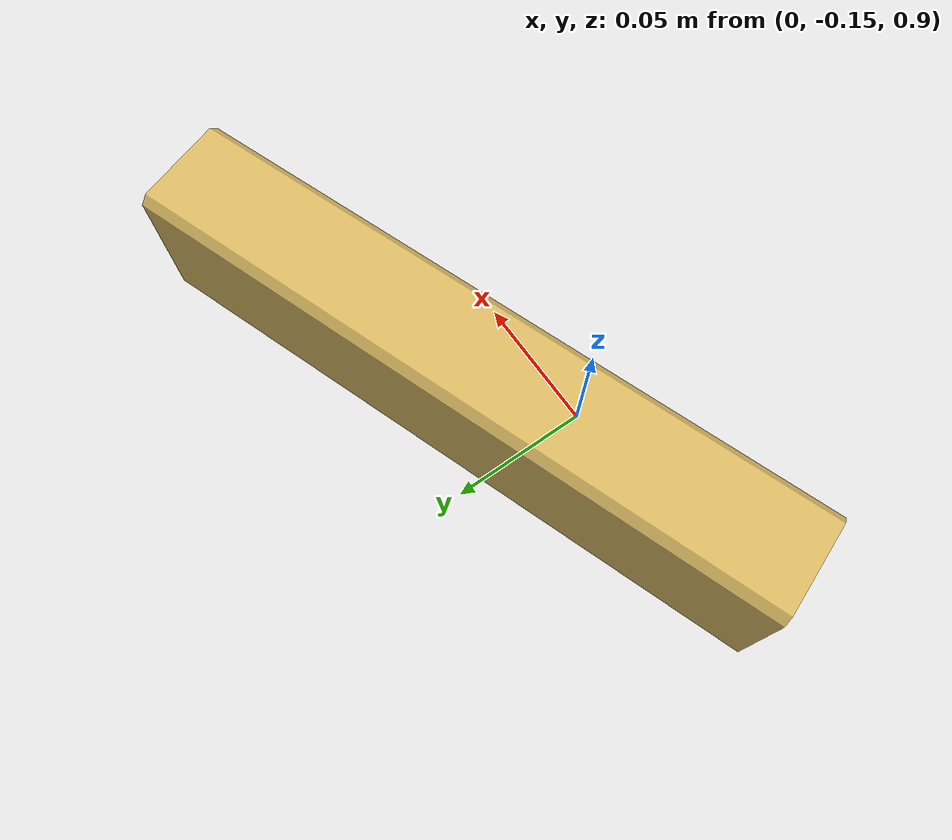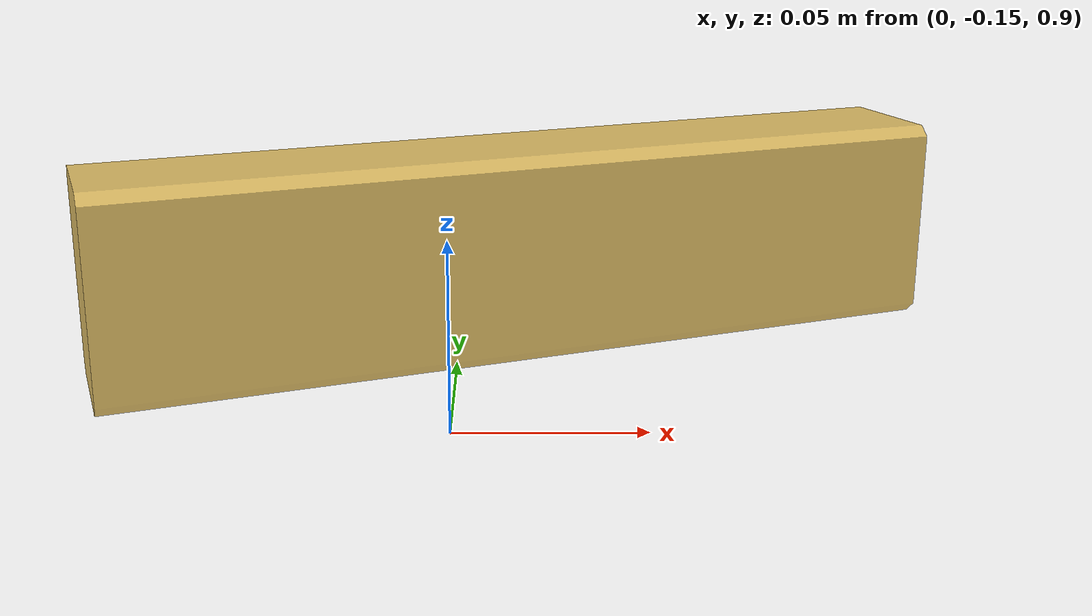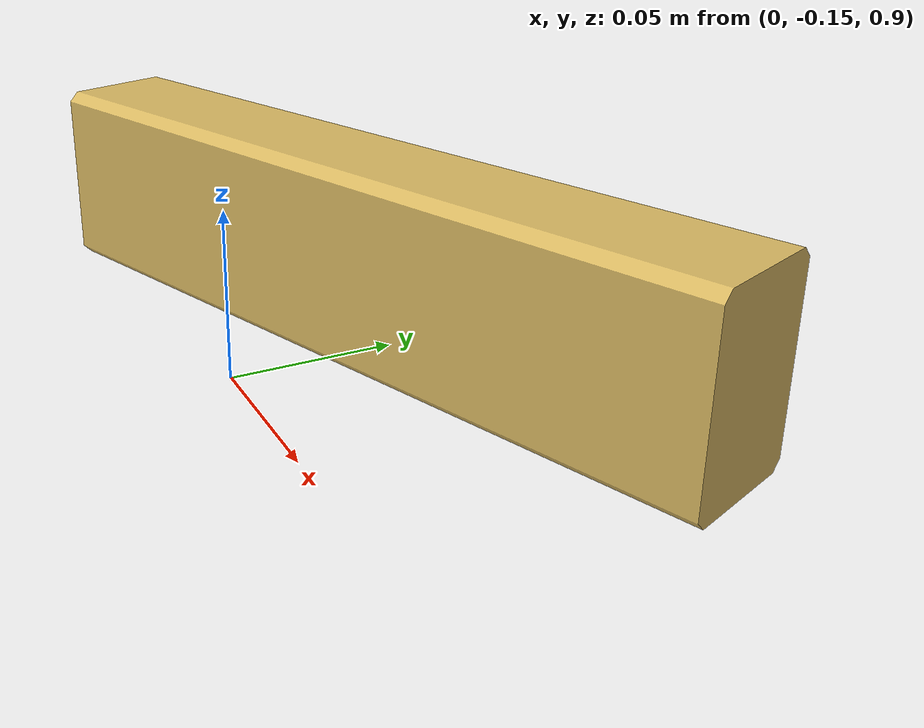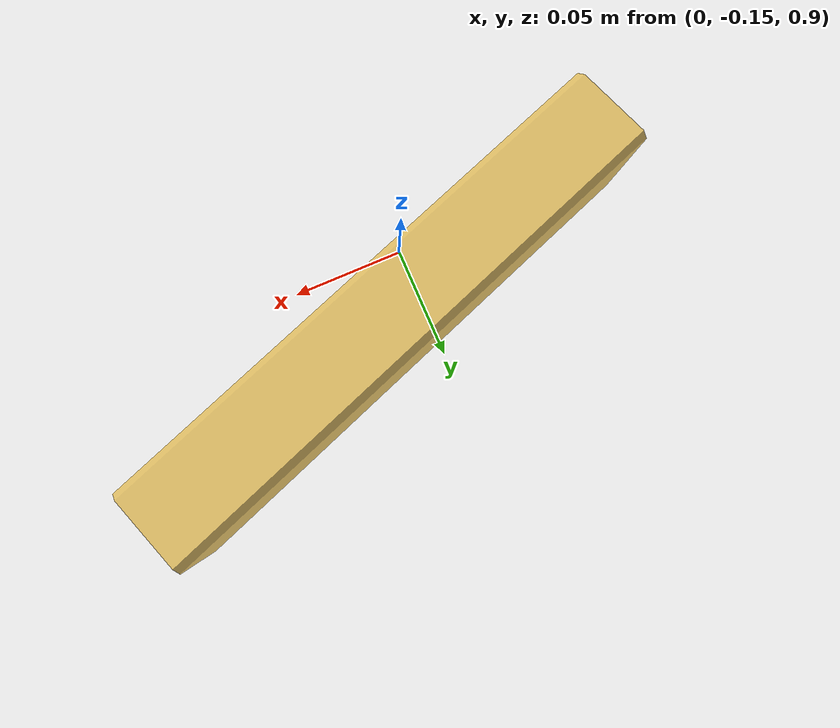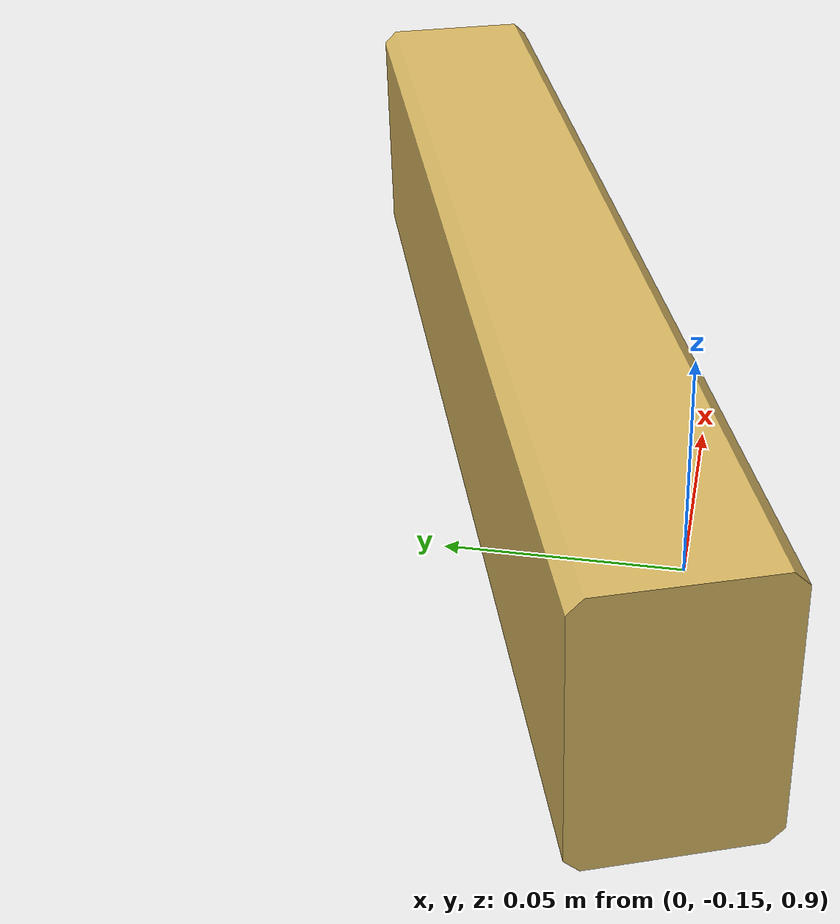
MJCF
<mujoco model="industreal_rectangular_peg_12mm">
  <!-- formal asset; XY scaled from official 8mm layout; Z layout preserved -->
  <asset>
    <mesh name="industreal_rectangular_peg_12mm_mesh"
          file="./industreal/mesh/industreal_pegs/industreal_rectangular_peg_12mm.obj"
          scale="4.5 4.5 4.5" />
    <material name="industreal_rectangular_peg_12mm_mat"
              rgba="0.86 0.73 0.39 1"
              specular="0.8"
              shininess="0.7" />
  </asset>

  <worldbody>
    <body name="industreal_rectangular_peg_12mm"
          pos="-0.1 -0.16 0.94"
          quat="0.6964 -0.1228 0.6964 0.1228">
      <freejoint name="industreal_rectangular_peg_12mm_joint" />

      <geom name="industreal_rectangular_peg_12mm_visual"
            type="mesh"
            mesh="industreal_rectangular_peg_12mm_mesh"
            material="industreal_rectangular_peg_12mm_mat"
            contype="0"
            conaffinity="0"
            density="0"
            group="1" />

      <geom name="industreal_rectangular_peg_12mm_collision"
            type="box"
            pos="0 0 0.081"
            size="0.026903 0.017798 0.0675"
            friction="0.7 0.2 0.005"
            solref="0.0015 1.0"
            solimp="0.995 0.999 0.0001"
            density="100"
            group="3" />

      <geom name="industreal_rectangular_peg_12mm_collision_upper"
            type="box"
            pos="0 0 0.1935"
            size="0.026903 0.017798 0.045"
            friction="0.7 0.2 0.005"
            solref="0.0015 1.0"
            solimp="0.995 0.999 0.0001"
            density="100"
            group="3" />

      <site name="industreal_rectangular_peg_12mm_grasp_site"
            pos="0 0 0.042"
            size="0.006 0.006 0.006"
            rgba="1 0 0 0" />
      <site name="industreal_rectangular_peg_12mm_tip_site"
            pos="0 0 0.0795"
            size="0.0045 0.0045 0.0045"
            rgba="0 1 0 0" />
    </body>

  </worldbody>
</mujoco>
